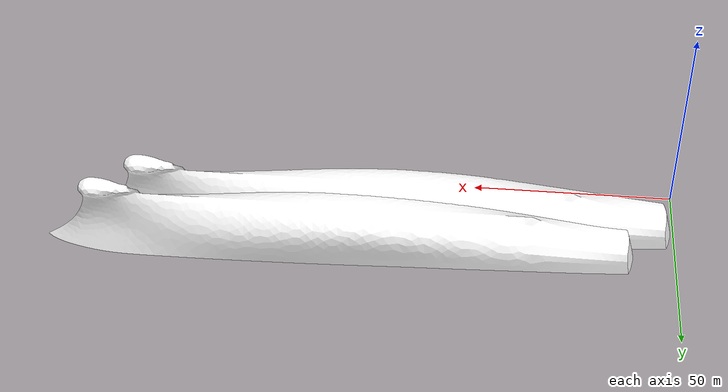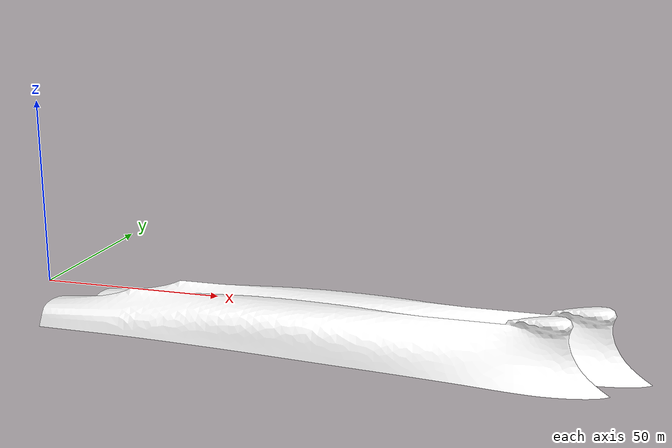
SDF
<?xml version="1.0"?>
<sdf version="1.7"
    xmlns:experimental="http://sdformat.org/schemas/experimental">
    <world name="lotusim">
        <scene>
            <ambient>1.0 1.0 1.0</ambient>
            <background>0.8 0.8 0.8</background>
            <grid>1</grid>
        </scene>

        <physics type="ode">            <!-- This is <10fps  -->
            <max_step_size>0.2</max_step_size>
            <real_time_factor>1</real_time_factor>
            <real_time_update_rate>1</real_time_update_rate>
        </physics>

        <spherical_coordinates>
            <surface_model>EARTH_WGS84</surface_model>
            <world_frame_orientation>ENU</world_frame_orientation>
            <latitude_deg>1.2421</latitude_deg>
            <longitude_deg>103.7198</longitude_deg>
            <elevation>0</elevation>
            <heading_deg>0</heading_deg>
        </spherical_coordinates>

        <gravity>0 0 0</gravity>
        <plugin filename="gz-sim-scene-broadcaster-system" name="gz::sim::systems::SceneBroadcaster" />

        <plugin filename="physics_interface_plugin" name="lotusim::gazebo::PhysicsInterfacePlugin">
        </plugin>

        <plugin filename="multi_agent_system_plugin" name="lotusim::gazebo::MultiAgentSystem">
        </plugin>

        <!-- The rendering application interface, default to ROS2 connection -->

        <plugin filename="lotusim_sensor_plugin" name="lotusim::sensor::LotusimSensorPlugin">
        </plugin>

        <plugin filename="render_plugin" name="lotusim::gazebo::RenderPlugin">
            <connection_protocol>ROS2</connection_protocol>
        </plugin>

        <plugin filename="waypoint_plugin" name="lotusim::gazebo::WaypointFollowerPlugin" />

        <include>
            <uri>model://dtmb_hull</uri>
            <name>frigate</name>
            <pose>0 0 0 0 0 0</pose>

            <lotus_param>
                <physics_engine_interface>
                    <surface>
                        <interface_type>XDynWebSocket</interface_type>
                        <uri>ws://127.0.0.1:12345</uri>
                        <thrusters>
                            <thruster1>PSPropRudd</thruster1>
                            <thruster2>SBPropRudd</thruster2>
                        </thrusters>
                    </surface>
                    <init_state>Surface</init_state>
                </physics_engine_interface>
            </lotus_param>
        </include>

        <include>
            <uri>model://dtmb_hull</uri>
            <name>frigate1</name>
            <pose>10 10 0 0 0 0</pose>

            <lotus_param>
                <physics_engine_interface>
                    <surface>
                        <interface_type>XDynWebSocket</interface_type>
                        <uri>ws://127.0.0.1:12346</uri>
                        <thrusters>
                            <thruster1>PSPropRudd</thruster1>
                            <thruster2>SBPropRudd</thruster2>
                        </thrusters>
                    </surface>
                    <init_state>Surface</init_state>
                </physics_engine_interface>
            </lotus_param>
        </include>
    </world>
</sdf>

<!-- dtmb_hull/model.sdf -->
<sdf version="1.7"
    xmlns:experimental="http://sdformat.org/schemas/experimental">
    <model name='dtmb'>
        <link name="base_link">
            <collision name="body_collision">
                <geometry>
                    <mesh>
                        <uri>model://dtmb_hull/meshes/dtmb.stl</uri>
                        <scale>1 1 1</scale>
                    </mesh>
                </geometry>
            </collision>
            <!-- Inertial (REQUIRED)   -->
            <inertial>
                <pose>0 0 0 0 0 0</pose>
                <mass>150</mass>
                <inertia>
                    <ixx>20</ixx>
                    <iyy>20</iyy>
                    <izz>30</izz>
                    <ixy>0</ixy>
                    <ixz>0</ixz>
                    <iyz>0</iyz>
                </inertia>
            </inertial>

            <!-- Visual                -->
            <visual name="visual">
                <pose>0 0 0 0 0 0</pose>
                <geometry>
                    <mesh>
                        <uri>model://dtmb_hull/meshes/dtmb_cdg_enu.dae</uri>
                        <scale>1 1 1</scale>
                    </mesh>
                </geometry>
            </visual>

            <!-- Collision (required) -->
            <collision name="collision">
                <pose>0 0 0 0 0 0</pose>
                <geometry>
                    <box>
                        <size>3 1 0.6</size>
                    </box>
                </geometry>
            </collision>

            <!-- AIS Sensor (custom)   -->
            <sensor name="ais_sensor" type="custom" gz:type="ais">
                <lotusim_power>
                    <type>sensor</type>
                    <nominal_w>2.0</nominal_w>
                    <priority>4</priority>
                </lotusim_power>
                <always_on>true</always_on>
                <update_rate>1</update_rate>
                <noise_sigma>0.01</noise_sigma>
                <noise_amplitude>0.01</noise_amplitude>
            </sensor>

            <!-- IMU Sensor (STANDARD) -->
            <sensor name="imu_sensor" type="imu">
                <lotusim_power>
                    <type>sensor</type>
                    <nominal_w>2.0</nominal_w>
                    <priority>4</priority>
                </lotusim_power>
                <always_on>true</always_on>
                <update_rate>100</update_rate>
                <pose>0 0 0 0 0 0</pose>

                <imu>
                    <angular_velocity>
                        <x>
                            <noise type="gaussian">
                                <mean>0</mean>
                                <stddev>0.0001</stddev>
                            </noise>
                        </x>
                        <y>
                            <noise type="gaussian">
                                <mean>0</mean>
                                <stddev>0.0001</stddev>
                            </noise>
                        </y>
                        <z>
                            <noise type="gaussian">
                                <mean>0</mean>
                                <stddev>0.0001</stddev>
                            </noise>
                        </z>
                    </angular_velocity>

                    <linear_acceleration>
                        <x>
                            <noise type="gaussian">
                                <mean>0</mean>
                                <stddev>0.01</stddev>
                            </noise>
                        </x>
                        <y>
                            <noise type="gaussian">
                                <mean>0</mean>
                                <stddev>0.01</stddev>
                            </noise>
                        </y>
                        <z>
                            <noise type="gaussian">
                                <mean>0</mean>
                                <stddev>0.01</stddev>
                            </noise>
                        </z>
                    </linear_acceleration>
                </imu>
            </sensor>

            <!-- 2D LIDAR (STANDARD) -->
            <sensor name="lidar_sensor" type="gpu_lidar">
                <lotusim_power>
                    <type>sensor</type>
                    <nominal_w>2.0</nominal_w>
                    <priority>3</priority>
                </lotusim_power>
                <pose>0 0 0 0 0 0</pose>
                <always_on>true</always_on>
                <update_rate>10.0</update_rate>
                <visualize>true</visualize>
                <ray>
                    <scan>
                        <horizontal>
                            <samples>360</samples>
                            <resolution>1</resolution>
                            <min_angle>-3.14159</min_angle>
                            <max_angle>3.14159</max_angle>
                        </horizontal>
                        <vertical>
                            <samples>1</samples>
                            <min_angle>0.2618</min_angle>
                            <max_angle>0.2618</max_angle>
                        </vertical>
                    </scan>
                    <range>
                        <min>5.0</min>
                        <max>100.0</max>
                        <resolution>0.01</resolution>
                    </range>
                    <noise>
                        <type>gaussian</type>
                        <mean>0.0</mean>
                        <stddev>0.01</stddev>
                    </noise>
                </ray>
            </sensor>

            <!-- RADAR                 -->
            <sensor name="radar_sensor" type="custom" gz:type="radar">
                <lotusim_power>
                    <type>sensor</type>
                    <nominal_w>1.0</nominal_w>
                    <priority>3</priority>
                </lotusim_power>
                <always_on>true</always_on>
                <update_rate>1</update_rate>
                <is_on>true</is_on>

                <lidar_gz_topic>
                    world/lotusim/model/commando_center/link/base_link/sensor/lidar_sensor/scan/points
                </lidar_gz_topic>

                <min_range>5.0</min_range>
                <max_range>100.0</max_range>

                <psf_ellipse_width>15000</psf_ellipse_width>
                <psf_ellipse_height>5000</psf_ellipse_height>
                <psf_range_factor>0.2</psf_range_factor>

                <noise_sigma>0.01</noise_sigma>
                <noise_amplitude>0.01</noise_amplitude>
            </sensor>
            <sensor name='sensor_contact' type='contact'>
                <contact>
                    <collision>body_collision</collision>
                    <topic>/collision</topic>
                </contact>
                <always_on>1</always_on>
                <update_rate>100</update_rate>
            </sensor>

            <!-- DVL                 -->
            <sensor name="dvl_sensor" type="custom" gz:type="dvl">

                <always_on>true</always_on>
                <update_rate>5</update_rate>
                <beam_angle_deg>30</beam_angle_deg>

                <noise>
                    <type>gaussian</type>
                    <mean>0.0</mean>
                    <stddev>0.01</stddev>
                </noise>

                <lotusim_seafloor>
                    <png_path>model://seabed/seabed.png</png_path>
                    <size_x>1000</size_x>
                    <size_y>1000</size_y>
                    <min_depth>-50</min_depth>
                    <max_depth>0</max_depth>
                </lotusim_seafloor>

                <max_altitude>1000</max_altitude>
            </sensor>
        </link>
        <lotusim_power>
            <name>main_battery</name>
            <type>simple_battery</type>
            <capacity_ah>100</capacity_ah>
            <initial_soc>0.45</initial_soc>
            <voltage_min>4.0</voltage_min>
            <voltage_nominal>12.0</voltage_nominal>
        </lotusim_power>
        <lotusim_power>
            <name>backup_battery</name>
            <type>simple_battery</type>
            <capacity_ah>100</capacity_ah>
            <initial_soc>0.8</initial_soc>
            <voltage_min>4.0</voltage_min>
            <voltage_nominal>12.0</voltage_nominal>
        </lotusim_power>
        <lotusim_power>
            <name>test_generator</name>
            <type>simple_generator</type>
            <fuel_type>diesel</fuel_type>
            <fuel_capacity>0.00001</fuel_capacity>
            <fuel_level_start>0.00001</fuel_level_start>
            <rated_output_w>6</rated_output_w>
            <efficiency>0.15</efficiency>
            <voltage_nominal>48.0</voltage_nominal>
        </lotusim_power>
    </model>
</sdf>
